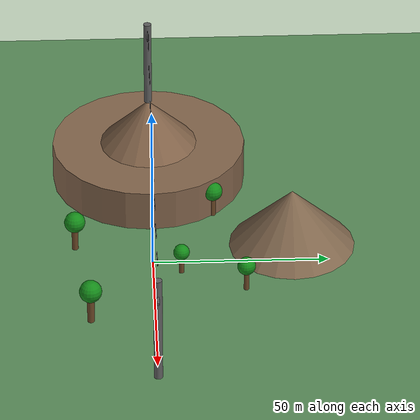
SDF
<sdf version="1.7">
 <world name="inspection_world">
  <light type="directional" name="sun">
   <pose>0 0 120 0 0 0</pose>
   <diffuse>1 1 1 1</diffuse>
   <specular>0.4 0.4 0.4 1</specular>
   <direction>-0.4 0.2 -1</direction>
  </light>
  <model name="ground">
   <static>true</static>
   <link name="link">
    <collision name="collision">
     <geometry><plane><normal>0 0 1</normal><size>500 500</size></plane></geometry>
    </collision>
    <visual name="visual">
     <geometry><plane><normal>0 0 1</normal><size>500 500</size></plane></geometry>
     <material><ambient>0.35 0.55 0.35 1</ambient><diffuse>0.35 0.55 0.35 1</diffuse></material>
    </visual>
   </link>
  </model>
  <model name="mountain_main">
   <static>true</static>
   <pose>-45 0 0 0 0 0</pose>
   <link name="link">
    <collision name="base_collision">
     <pose>0 0 6 0 0 0</pose>
     <geometry><cylinder><radius>28</radius><length>12</length></cylinder></geometry>
    </collision>
    <collision name="peak_collision">
     <pose>0 0 16 0 0 0</pose>
     <geometry><cone><radius>20</radius><length>20</length></cone></geometry>
    </collision>
    <visual name="base_visual">
     <pose>0 0 6 0 0 0</pose>
     <geometry><cylinder><radius>28</radius><length>12</length></cylinder></geometry>
     <material><ambient>0.44 0.35 0.27 1</ambient><diffuse>0.52 0.4 0.3 1</diffuse></material>
    </visual>
    <visual name="peak_visual">
     <pose>0 0 16 0 0 0</pose>
     <geometry><cone><radius>20</radius><length>20</length></cone></geometry>
     <material><ambient>0.42 0.33 0.25 1</ambient><diffuse>0.5 0.38 0.28 1</diffuse></material>
    </visual>
   </link>
  </model>
  <model name="mountain_side">
   <static>true</static>
   <pose>-8 40 0 0 0 0</pose>
   <link name="link">
    <collision name="collision">
     <pose>0 0 9 0 0 0</pose>
     <geometry><cone><radius>18</radius><length>18</length></cone></geometry>
    </collision>
    <visual name="visual">
     <pose>0 0 9 0 0 0</pose>
     <geometry><cone><radius>18</radius><length>18</length></cone></geometry>
     <material><ambient>0.43 0.35 0.28 1</ambient><diffuse>0.5 0.4 0.3 1</diffuse></material>
    </visual>
   </link>
  </model>
  <model name="tower_mountain">
   <static>true</static>
   <pose>-45 0 39 0 0 0</pose>
   <link name="link">
    <collision name="mast_collision">
     <geometry><cylinder><radius>1.1</radius><length>26</length></cylinder></geometry>
    </collision>
    <collision name="crossarm_collision">
     <pose>0 0 10 0 1.5708 0</pose>
     <geometry><cylinder><radius>0.35</radius><length>8</length></cylinder></geometry>
    </collision>
    <visual name="mast_visual">
     <geometry><cylinder><radius>1.1</radius><length>26</length></cylinder></geometry>
     <material><ambient>0.27 0.27 0.27 1</ambient><diffuse>0.38 0.38 0.38 1</diffuse></material>
    </visual>
    <visual name="crossarm_visual">
     <pose>0 0 10 0 1.5708 0</pose>
     <geometry><cylinder><radius>0.35</radius><length>8</length></cylinder></geometry>
     <material><ambient>0.27 0.27 0.27 1</ambient><diffuse>0.38 0.38 0.38 1</diffuse></material>
    </visual>
   </link>
  </model>
  <model name="tower_plain">
   <static>true</static>
   <pose>55 0 16 0 0 0</pose>
   <link name="link">
    <collision name="mast_collision">
     <geometry><cylinder><radius>1.2</radius><length>32</length></cylinder></geometry>
    </collision>
    <collision name="crossarm_collision">
     <pose>0 0 11 0 1.5708 0</pose>
     <geometry><cylinder><radius>0.35</radius><length>8.5</length></cylinder></geometry>
    </collision>
    <visual name="mast_visual">
     <geometry><cylinder><radius>1.2</radius><length>32</length></cylinder></geometry>
     <material><ambient>0.27 0.27 0.27 1</ambient><diffuse>0.38 0.38 0.38 1</diffuse></material>
    </visual>
    <visual name="crossarm_visual">
     <pose>0 0 11 0 1.5708 0</pose>
     <geometry><cylinder><radius>0.35</radius><length>8.5</length></cylinder></geometry>
     <material><ambient>0.27 0.27 0.27 1</ambient><diffuse>0.38 0.38 0.38 1</diffuse></material>
    </visual>
   </link>
  </model>
  <model name="powerline_catenary">
   <static>true</static>
   <link name="link">
    <visual name="wire_seg_1">
     <pose>-38.75 0 50.5 0 1.513 0</pose>
     <geometry><cylinder><radius>0.12</radius><length>12.8</length></cylinder></geometry>
     <material><ambient>0.06 0.06 0.06 1</ambient><diffuse>0.1 0.1 0.1 1</diffuse></material>
    </visual>
    <visual name="wire_seg_2">
     <pose>-26.25 0 46.5 0 1.442 0</pose>
     <geometry><cylinder><radius>0.12</radius><length>12.8</length></cylinder></geometry>
     <material><ambient>0.06 0.06 0.06 1</ambient><diffuse>0.1 0.1 0.1 1</diffuse></material>
    </visual>
    <visual name="wire_seg_3">
     <pose>-13.75 0 42.5 0 1.412 0</pose>
     <geometry><cylinder><radius>0.12</radius><length>12.8</length></cylinder></geometry>
     <material><ambient>0.06 0.06 0.06 1</ambient><diffuse>0.1 0.1 0.1 1</diffuse></material>
    </visual>
    <visual name="wire_seg_4">
     <pose>-1.25 0 39.5 0 1.373 0</pose>
     <geometry><cylinder><radius>0.12</radius><length>12.8</length></cylinder></geometry>
     <material><ambient>0.06 0.06 0.06 1</ambient><diffuse>0.1 0.1 0.1 1</diffuse></material>
    </visual>
    <visual name="wire_seg_5">
     <pose>11.25 0 37.5 0 1.333 0</pose>
     <geometry><cylinder><radius>0.12</radius><length>12.8</length></cylinder></geometry>
     <material><ambient>0.06 0.06 0.06 1</ambient><diffuse>0.1 0.1 0.1 1</diffuse></material>
    </visual>
    <visual name="wire_seg_6">
     <pose>23.75 0 36.2 0 1.298 0</pose>
     <geometry><cylinder><radius>0.12</radius><length>12.8</length></cylinder></geometry>
     <material><ambient>0.06 0.06 0.06 1</ambient><diffuse>0.1 0.1 0.1 1</diffuse></material>
    </visual>
    <visual name="wire_seg_7">
     <pose>36.25 0 35.3 0 1.278 0</pose>
     <geometry><cylinder><radius>0.12</radius><length>12.8</length></cylinder></geometry>
     <material><ambient>0.06 0.06 0.06 1</ambient><diffuse>0.1 0.1 0.1 1</diffuse></material>
    </visual>
    <visual name="wire_seg_8">
     <pose>48.75 0 34.8 0 1.263 0</pose>
     <geometry><cylinder><radius>0.12</radius><length>12.8</length></cylinder></geometry>
     <material><ambient>0.06 0.06 0.06 1</ambient><diffuse>0.1 0.1 0.1 1</diffuse></material>
    </visual>
   </link>
  </model>
  <model name="tree_1">
   <static>true</static>
   <pose>-24 18 0 0 0 0</pose>
   <link name="link">
    <collision name="trunk_collision">
     <pose>0 0 3 0 0 0</pose>
     <geometry><cylinder><radius>0.8</radius><length>6</length></cylinder></geometry>
    </collision>
    <collision name="crown_collision">
     <pose>0 0 8 0 0 0</pose>
     <geometry><sphere><radius>2.8</radius></sphere></geometry>
    </collision>
    <visual name="trunk_visual">
     <pose>0 0 3 0 0 0</pose>
     <geometry><cylinder><radius>0.8</radius><length>6</length></cylinder></geometry>
     <material><ambient>0.35 0.23 0.12 1</ambient><diffuse>0.42 0.28 0.15 1</diffuse></material>
    </visual>
    <visual name="crown_visual">
     <pose>0 0 8 0 0 0</pose>
     <geometry><sphere><radius>2.8</radius></sphere></geometry>
     <material><ambient>0.05 0.45 0.08 1</ambient><diffuse>0.08 0.55 0.1 1</diffuse></material>
    </visual>
   </link>
  </model>
  <model name="tree_2">
   <static>true</static>
   <pose>-8 -22 0 0 0 0</pose>
   <link name="link">
    <collision name="trunk_collision">
     <pose>0 0 3.5 0 0 0</pose>
     <geometry><cylinder><radius>0.9</radius><length>7</length></cylinder></geometry>
    </collision>
    <collision name="crown_collision">
     <pose>0 0 9 0 0 0</pose>
     <geometry><sphere><radius>3</radius></sphere></geometry>
    </collision>
    <visual name="trunk_visual">
     <pose>0 0 3.5 0 0 0</pose>
     <geometry><cylinder><radius>0.9</radius><length>7</length></cylinder></geometry>
     <material><ambient>0.35 0.23 0.12 1</ambient><diffuse>0.42 0.28 0.15 1</diffuse></material>
    </visual>
    <visual name="crown_visual">
     <pose>0 0 9 0 0 0</pose>
     <geometry><sphere><radius>3</radius></sphere></geometry>
     <material><ambient>0.05 0.45 0.08 1</ambient><diffuse>0.08 0.55 0.1 1</diffuse></material>
    </visual>
   </link>
  </model>
  <model name="tree_3">
   <static>true</static>
   <pose>14 26 0 0 0 0</pose>
   <link name="link">
    <collision name="trunk_collision">
     <pose>0 0 3 0 0 0</pose>
     <geometry><cylinder><radius>0.75</radius><length>6</length></cylinder></geometry>
    </collision>
    <collision name="crown_collision">
     <pose>0 0 7.8 0 0 0</pose>
     <geometry><sphere><radius>2.6</radius></sphere></geometry>
    </collision>
    <visual name="trunk_visual">
     <pose>0 0 3 0 0 0</pose>
     <geometry><cylinder><radius>0.75</radius><length>6</length></cylinder></geometry>
     <material><ambient>0.35 0.23 0.12 1</ambient><diffuse>0.42 0.28 0.15 1</diffuse></material>
    </visual>
    <visual name="crown_visual">
     <pose>0 0 7.8 0 0 0</pose>
     <geometry><sphere><radius>2.6</radius></sphere></geometry>
     <material><ambient>0.05 0.45 0.08 1</ambient><diffuse>0.08 0.55 0.1 1</diffuse></material>
    </visual>
   </link>
  </model>
  <model name="tree_4">
   <static>true</static>
   <pose>28 -18 0 0 0 0</pose>
   <link name="link">
    <collision name="trunk_collision">
     <pose>0 0 4 0 0 0</pose>
     <geometry><cylinder><radius>1</radius><length>8</length></cylinder></geometry>
    </collision>
    <collision name="crown_collision">
     <pose>0 0 10 0 0 0</pose>
     <geometry><sphere><radius>3.2</radius></sphere></geometry>
    </collision>
    <visual name="trunk_visual">
     <pose>0 0 4 0 0 0</pose>
     <geometry><cylinder><radius>1</radius><length>8</length></cylinder></geometry>
     <material><ambient>0.35 0.23 0.12 1</ambient><diffuse>0.42 0.28 0.15 1</diffuse></material>
    </visual>
    <visual name="crown_visual">
     <pose>0 0 10 0 0 0</pose>
     <geometry><sphere><radius>3.2</radius></sphere></geometry>
     <material><ambient>0.05 0.45 0.08 1</ambient><diffuse>0.08 0.55 0.1 1</diffuse></material>
    </visual>
   </link>
  </model>
  <model name="tree_5">
   <static>true</static>
   <pose>5 8 0 0 0 0</pose>
   <link name="link">
    <collision name="trunk_collision">
     <pose>0 0 2.5 0 0 0</pose>
     <geometry><cylinder><radius>0.7</radius><length>5</length></cylinder></geometry>
    </collision>
    <collision name="crown_collision">
     <pose>0 0 6.8 0 0 0</pose>
     <geometry><sphere><radius>2.3</radius></sphere></geometry>
    </collision>
    <visual name="trunk_visual">
     <pose>0 0 2.5 0 0 0</pose>
     <geometry><cylinder><radius>0.7</radius><length>5</length></cylinder></geometry>
     <material><ambient>0.35 0.23 0.12 1</ambient><diffuse>0.42 0.28 0.15 1</diffuse></material>
    </visual>
    <visual name="crown_visual">
     <pose>0 0 6.8 0 0 0</pose>
     <geometry><sphere><radius>2.3</radius></sphere></geometry>
     <material><ambient>0.05 0.45 0.08 1</ambient><diffuse>0.08 0.55 0.1 1</diffuse></material>
    </visual>
   </link>
  </model>
 </world>
</sdf>
